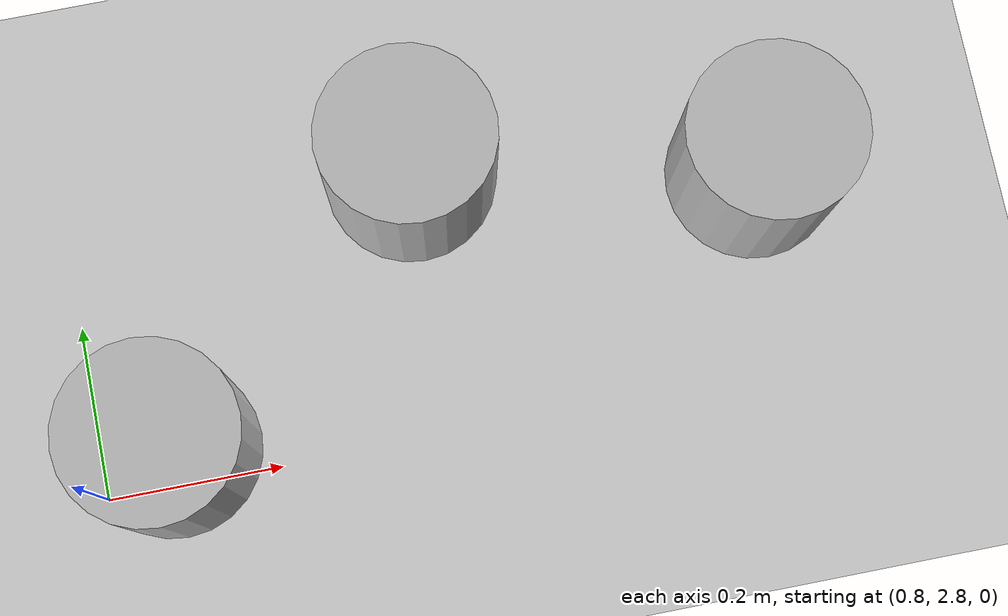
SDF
<?xml version="1.0" ?>
<sdf version="1.4">
    <world name="myworld">
        <include>
            <uri>model://sun</uri>
        </include>
        <include>
            <uri>model://ground_plane</uri>
        </include>
        <model name="cylinder_1">
            <pose>0.882802 2.841763 0 0 0 0</pose>
            <link name="cyl">
                <pose>0 0 0.1 0 0 0</pose>
                <collision name="collision">
                    <geometry>
                        <cylinder>
                            <radius>0.1</radius>
                            <length>0.2</length>
                        </cylinder>
                    </geometry>
                </collision>
                <visual name="visual">
                    <geometry>
                        <cylinder>
                            <radius>0.1</radius>
                            <length>0.2</length>
                        </cylinder>
                    </geometry>
                </visual>
            </link>
            <static>1</static>
        </model>
        <model name="cylinder_2">
            <pose>1.595424 3.031844 0 0 0 0</pose>
            <link name="cyl">
                <pose>0 0 0.1 0 0 0</pose>
                <collision name="collision">
                    <geometry>
                        <cylinder>
                            <radius>0.1</radius>
                            <length>0.2</length>
                        </cylinder>
                    </geometry>
                </collision>
                <visual name="visual">
                    <geometry>
                        <cylinder>
                            <radius>0.1</radius>
                            <length>0.2</length>
                        </cylinder>
                    </geometry>
                </visual>
            </link>
            <static>1</static>
        </model>
        <model name="cylinder_3">
            <pose>1.205136 3.103662 0 0 0 0</pose>
            <link name="cyl">
                <pose>0 0 0.1 0 0 0</pose>
                <collision name="collision">
                    <geometry>
                        <cylinder>
                            <radius>0.1</radius>
                            <length>0.2</length>
                        </cylinder>
                    </geometry>
                </collision>
                <visual name="visual">
                    <geometry>
                        <cylinder>
                            <radius>0.1</radius>
                            <length>0.2</length>
                        </cylinder>
                    </geometry>
                </visual>
            </link>
            <static>1</static>
        </model>
    </world>
</sdf>
